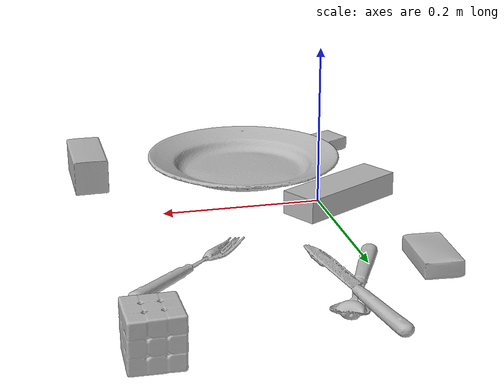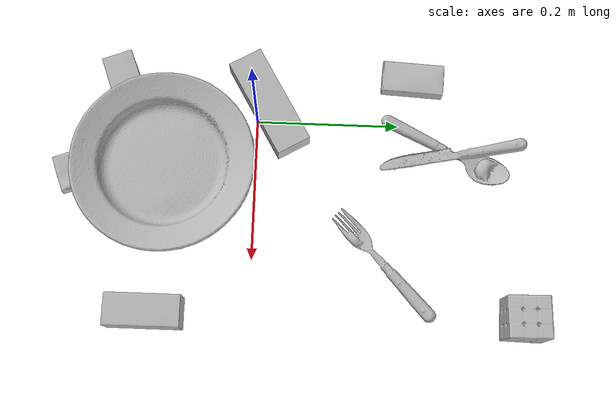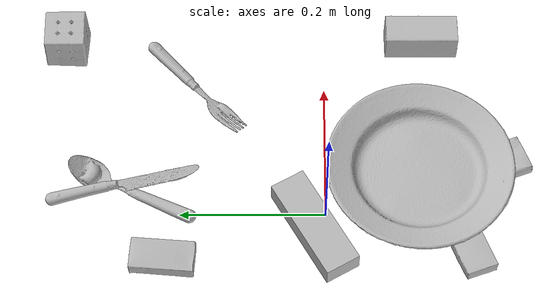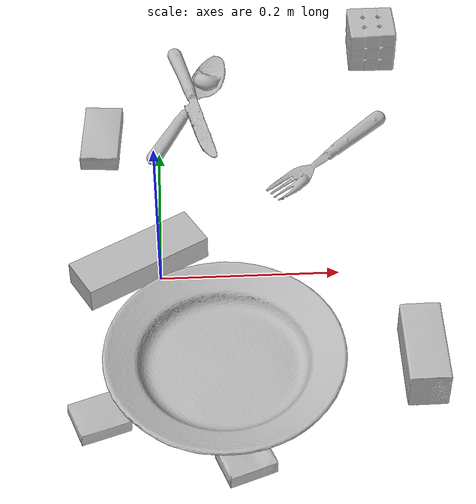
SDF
<sdf version="1.4">
  <world name="default">
    <light name="light1" type="point">
      <pose>0 0 1 0 0 0</pose>
      <diffuse>3 3 3 1</diffuse>
      <specular>3 3 3 1</specular>
    </light>
    <light name="light2" type="point">
      <pose>0 0.5 2 0 0 0</pose>
      <diffuse>1 1 1 1</diffuse>
      <specular>1 1 1 1</specular>
    </light>
    <light name="light3" type="point">
      <pose>0 0.5 2 0 0 0</pose>
      <diffuse>3 3 3 1</diffuse>
      <specular>3 3 3 1</specular>
    </light>
    <scene>
      <ambient>0.7 0.7 0.7</ambient>
    </scene>
    <model name="box11">
      <link name="link_box11">
        <collision name="default">
          <geometry>
            <mesh>
              <uri>model://pudding_box/collision_meshes/collision.obj</uri>
              <scale>0.5 0.5 0.5</scale>
            </mesh>
          </geometry>
          <surface>
            <friction>
              <ode>
                <mu>0.5</mu>
                <mu2>0.5</mu2>
              </ode>
            </friction>
          <contact>
        <ode>
            <max_vel>0</max_vel>
            <min_depth>0.0001</min_depth>
            <kp>1e8</kp>
        </ode>
    </contact></surface>
        </collision>
        <visual name="default">
          <geometry>
            <mesh>
              <uri>model://pudding_box/visual_meshes/visual.dae</uri>
              <scale>0.5 0.5 0.5</scale>
            </mesh>
          </geometry>
        </visual>
        <inertial>
          <mass>0.05641884729266167</mass>
          <pose>0.00024474109522998333 0.000403394311433658 -0.00025944141088984907 0.005213101771016666 -0.006603799659696515 0.020079828883224148</pose>
          <inertia>
            <ixx>1.5944652e-05</ixx>
            <iyy>1.0727675e-05</iyy>
            <izz>2.3546443e-05</izz>
            <ixy>0</ixy>
            <ixz>0</ixz>
            <iyz>0</iyz>
          </inertia>
        </inertial>
      </link>
      <pose>-0.06482654809951782 -0.19827161729335785 0.00986290443688631 0.022348535515033543 -0.011391690348917008 1.928832522095472</pose>
    </model>
    <model name="box12">
      <link name="link_box12">
        <collision name="default">
          <geometry>
            <mesh>
              <uri>model://wood_block/collision_meshes/collision.obj</uri>
              <scale>0.5 0.5 0.5</scale>
            </mesh>
          </geometry>
          <surface>
            <friction>
              <ode>
                <mu>0.5</mu>
                <mu2>0.5</mu2>
              </ode>
            </friction>
          <contact>
        <ode>
            <max_vel>0</max_vel>
            <min_depth>0.0001</min_depth>
            <kp>1e8</kp>
        </ode>
    </contact></surface>
        </collision>
        <visual name="default">
          <geometry>
            <mesh>
              <uri>model://wood_block/visual_meshes/visual.dae</uri>
              <scale>0.5 0.5 0.5</scale>
            </mesh>
          </geometry>
        </visual>
        <inertial>
          <mass>0.1445801854133606</mass>
          <pose>-2.906657982748584e-06 -0.000285404734313488 0.00013204291462898254 -0.052208162951624955 -0.0051926954609686745 -0.006861377578377277</pose>
          <inertia>
            <ixx>4.836754e-05</ixx>
            <iyy>0.0001527931</iyy>
            <izz>0.00015222155</izz>
            <ixy>0</ixy>
            <ixz>0</ixz>
            <iyz>0</iyz>
          </inertia>
        </inertial>
      </link>
      <pose>0.2784273624420166 -0.13958340883255005 0.022629261016845703 -0.005208649083009077 0.005718760318651293 -1.5672734494462148</pose>
    </model>
    <model name="box13">
      <link name="link_box13">
        <collision name="default">
          <geometry>
            <mesh>
              <uri>model://sugar_box/collision_meshes/collision.obj</uri>
              <scale>0.5 0.5 0.5</scale>
            </mesh>
          </geometry>
          <surface>
            <friction>
              <ode>
                <mu>0.5</mu>
                <mu2>0.5</mu2>
              </ode>
            </friction>
          <contact>
        <ode>
            <max_vel>0</max_vel>
            <min_depth>0.0001</min_depth>
            <kp>1e8</kp>
        </ode>
    </contact></surface>
        </collision>
        <visual name="default">
          <geometry>
            <mesh>
              <uri>model://sugar_box/visual_meshes/visual.dae</uri>
              <scale>0.5 0.5 0.5</scale>
            </mesh>
          </geometry>
        </visual>
        <inertial>
          <mass>0.1187032163143158</mass>
          <pose>0.0005171863595023751 1.924554817378521e-05 -0.00018182402709499002 -0.0004046259512710581 0.0010506635216588768 0.002615378556274426</pose>
          <inertia>
            <ixx>2.4725794e-05</ixx>
            <iyy>7.991886e-05</iyy>
            <izz>9.567241e-05</izz>
            <ixy>0</ixy>
            <ixz>0</ixz>
            <iyz>0</iyz>
          </inertia>
        </inertial>
      </link>
      <pose>-0.06861796230077744 0.21996280550956726 0.01139931008219719 0.0007750641310848407 -0.023432600019186806 1.5006574885309933</pose>
    </model>
    <model name="box21">
      <link name="link_box21">
        <collision name="default">
          <geometry>
            <mesh>
              <uri>model://jenga/collision_meshes/collision.obj</uri>
              <scale>1.0 1.0 1.0</scale>
            </mesh>
          </geometry>
          <surface>
            <friction>
              <ode>
                <mu>0.5</mu>
                <mu2>0.5</mu2>
              </ode>
            </friction>
          <contact>
        <ode>
            <max_vel>0</max_vel>
            <min_depth>0.0001</min_depth>
            <kp>1e8</kp>
        </ode>
    </contact></surface>
        </collision>
        <visual name="default">
          <geometry>
            <mesh>
              <uri>model://jenga/visual_meshes/visual.dae</uri>
              <scale>1.0 1.0 1.0</scale>
            </mesh>
          </geometry>
        </visual>
        <inertial>
          <mass>0.20898528397083282</mass>
          <pose>-2.502855807051674e-07 -0.00010250010382151231 -4.092339804628864e-05 0.0 -7.342154049184251e-07 0.0</pose>
          <inertia>
            <ixx>5.7831294e-05</ixx>
            <iyy>0.0003918633</iyy>
            <izz>0.00041834736</izz>
            <ixy>0</ixy>
            <ixz>0</ixz>
            <iyz>0</iyz>
          </inertia>
        </inertial>
      </link>
      <pose>-0.023701196536421776 0.01563483476638794 0.014999999664723873 3.3130699388483086e-08 -6.694471010599207e-09 -2.617586125379651</pose>
    </model>
    <model name="box22">
      <link name="link_box22">
        <collision name="default">
          <geometry>
            <mesh>
              <uri>model://rubiks_cube/collision_meshes/collision.obj</uri>
              <scale>1.0 1.0 1.0</scale>
            </mesh>
          </geometry>
          <surface>
            <friction>
              <ode>
                <mu>0.5</mu>
                <mu2>0.5</mu2>
              </ode>
            </friction>
          <contact>
        <ode>
            <max_vel>0</max_vel>
            <min_depth>0.0001</min_depth>
            <kp>1e8</kp>
        </ode>
    </contact></surface>
        </collision>
        <visual name="default">
          <geometry>
            <mesh>
              <uri>model://rubiks_cube/visual_meshes/visual.dae</uri>
              <scale>1.0 1.0 1.0</scale>
            </mesh>
          </geometry>
        </visual>
        <inertial>
          <mass>0.28698527812957764</mass>
          <pose>2.6721041649580002e-05 5.2569666877388954e-05 -7.2643156272533815e-06 -0.05467256881712973 -0.09813902151902686 -0.034455808755049874</pose>
          <inertia>
            <ixx>0.00015857864</ixx>
            <iyy>0.00015783912</iyy>
            <izz>0.00015989273</izz>
            <ixy>0</ixy>
            <ixz>0</ixz>
            <iyz>0</iyz>
          </inertia>
        </inertial>
      </link>
      <pose>0.27045637369155884 0.3684951663017273 0.02867894433438778 -4.054020297378018e-06 -1.7631871445410597e-06 -3.1329502977410466</pose>
    </model>
    <model name="box23">
      <link name="link_box23">
        <collision name="default">
          <geometry>
            <mesh>
              <uri>model://cracker_box/collision_meshes/collision.obj</uri>
              <scale>0.25 0.25 0.25</scale>
            </mesh>
          </geometry>
          <surface>
            <friction>
              <ode>
                <mu>0.5</mu>
                <mu2>0.5</mu2>
              </ode>
            </friction>
          <contact>
        <ode>
            <max_vel>0</max_vel>
            <min_depth>0.0001</min_depth>
            <kp>1e8</kp>
        </ode>
    </contact></surface>
        </collision>
        <visual name="default">
          <geometry>
            <mesh>
              <uri>model://cracker_box/visual_meshes/visual.dae</uri>
              <scale>0.25 0.25 0.25</scale>
            </mesh>
          </geometry>
        </visual>
        <inertial>
          <mass>0.04468085244297981</mass>
          <pose>0.00023660414444748312 6.358561222441494e-05 -0.0004257383698131889 -0.0003162076226327385 -0.011106488669128663 0.0025467943033026423</pose>
          <inertia>
            <ixx>7.10301e-06</ixx>
            <iyy>1.1728463e-05</iyy>
            <izz>1.6737597e-05</izz>
            <ixy>0</ixy>
            <ixz>0</ixz>
            <iyz>0</iyz>
          </inertia>
        </inertial>
      </link>
      <pose>0.08433187752962112 -0.2583155930042267 0.009096026420593262 -0.014051160674843547 -0.0050160060357335775 -2.7795816920891125</pose>
    </model>
    <model name="plate1">
      <link name="link_plate1">
        <collision name="default">
          <geometry>
            <mesh>
              <uri>model://plate/collision_meshes/collision.obj</uri>
              <scale>1.0 1.0 1.0</scale>
            </mesh>
          </geometry>
          <surface>
            <friction>
              <ode>
                <mu>0.5</mu>
                <mu2>0.5</mu2>
              </ode>
            </friction>
          <contact>
        <ode>
            <max_vel>0</max_vel>
            <min_depth>0.0001</min_depth>
            <kp>1e8</kp>
        </ode>
    </contact></surface>
        </collision>
        <visual name="default">
          <geometry>
            <mesh>
              <uri>model://plate/visual_meshes/visual.dae</uri>
              <scale>1.0 1.0 1.0</scale>
            </mesh>
          </geometry>
        </visual>
        <inertial>
          <mass>0.20184239745140076</mass>
          <pose>-0.0006044648471288383 0.00027825962752103806 -0.0010561983799561858 0.0022188105697194356 -0.003225466439192432 0.4526020757977656</pose>
          <inertia>
            <ixx>0.00094422296</ixx>
            <iyy>0.00093519164</iyy>
            <izz>0.0018467589</izz>
            <ixy>0</ixy>
            <ixz>0</ixz>
            <iyz>0</iyz>
          </inertia>
        </inertial>
      </link>
      <pose>0.06702572107315063 -0.13056668639183044 0.013733006082475185 1.0798482682490445e-07 1.186222251571155e-08 0.36265234418684505</pose>
    </model>
    <model name="silverware1">
      <link name="link_silverware1">
        <collision name="default">
          <geometry>
            <mesh>
              <uri>model://fork/collision_meshes/collision.obj</uri>
              <scale>1.0 1.0 1.0</scale>
            </mesh>
          </geometry>
          <surface>
            <friction>
              <ode>
                <mu>0.5</mu>
                <mu2>0.5</mu2>
              </ode>
            </friction>
          <contact>
        <ode>
            <max_vel>0</max_vel>
            <min_depth>0.0001</min_depth>
            <kp>1e8</kp>
        </ode>
    </contact></surface>
        </collision>
        <visual name="default">
          <geometry>
            <mesh>
              <uri>model://fork/visual_meshes/visual.dae</uri>
              <scale>1.0 1.0 1.0</scale>
            </mesh>
          </geometry>
        </visual>
        <inertial>
          <mass>0.03151825815439224</mass>
          <pose>-0.029570046812295914 0.00046588233090005815 0.0003218861820641905 -0.013550990610422763 -0.010977834578584837 0.014453900606944525</pose>
          <inertia>
            <ixx>1.1048933e-06</ixx>
            <iyy>8.2285114e-05</iyy>
            <izz>8.2779305e-05</izz>
            <ixy>0</ixy>
            <ixz>0</ixz>
            <iyz>0</iyz>
          </inertia>
        </inertial>
      </link>
      <pose>0.2027038335800171 0.18364757299423218 0.005738855339586735 -0.1892353473953535 0.02425312773231947 -2.402477285683084</pose>
    </model>
    <model name="silverware2">
      <link name="link_silverware2">
        <collision name="default">
          <geometry>
            <mesh>
              <uri>model://spoon/collision_meshes/collision.obj</uri>
              <scale>1.0 1.0 1.0</scale>
            </mesh>
          </geometry>
          <surface>
            <friction>
              <ode>
                <mu>0.5</mu>
                <mu2>0.5</mu2>
              </ode>
            </friction>
          <contact>
        <ode>
            <max_vel>0</max_vel>
            <min_depth>0.0001</min_depth>
            <kp>1e8</kp>
        </ode>
    </contact></surface>
        </collision>
        <visual name="default">
          <geometry>
            <mesh>
              <uri>model://spoon/visual_meshes/visual.dae</uri>
              <scale>1.0 1.0 1.0</scale>
            </mesh>
          </geometry>
        </visual>
        <inertial>
          <mass>0.04083608463406563</mass>
          <pose>-0.005526324734091759 -0.001603417913429439 -0.0007271658978424966 0.03521537575369321 -0.03906582415196765 0.006150608891198343</pose>
          <inertia>
            <ixx>2.2713682e-06</ixx>
            <iyy>0.0001553799</iyy>
            <izz>0.0001565001</izz>
            <ixy>0</ixy>
            <ixz>0</ixz>
            <iyz>0</iyz>
          </inertia>
        </inertial>
      </link>
      <pose>0.03207472339272499 0.2672242224216461 0.008374716155230999 -0.04075662222557215 0.02639408134473247 1.1113792487348726</pose>
    </model>
    <model name="silverware3">
      <link name="link_silverware3">
        <collision name="default">
          <geometry>
            <mesh>
              <uri>model://knife/collision_meshes/collision.obj</uri>
              <scale>1.0 1.0 1.0</scale>
            </mesh>
          </geometry>
          <surface>
            <friction>
              <ode>
                <mu>0.5</mu>
                <mu2>0.5</mu2>
              </ode>
            </friction>
          <contact>
        <ode>
            <max_vel>0</max_vel>
            <min_depth>0.0001</min_depth>
            <kp>1e8</kp>
        </ode>
    </contact></surface>
        </collision>
        <visual name="default">
          <geometry>
            <mesh>
              <uri>model://knife/visual_meshes/visual.dae</uri>
              <scale>1.0 1.0 1.0</scale>
            </mesh>
          </geometry>
        </visual>
        <inertial>
          <mass>0.024411516264081</mass>
          <pose>-0.023785248398780823 0.0015275123296305537 5.062021955382079e-05 0.07305335097392199 0.01724841144103926 -0.007409823891069756</pose>
          <inertia>
            <ixx>6.9289786e-07</ixx>
            <iyy>9.37851e-05</iyy>
            <izz>9.400826e-05</izz>
            <ixy>0</ixy>
            <ixz>0</ixz>
            <iyz>0</iyz>
          </inertia>
        </inertial>
      </link>
      <pose>0.04109175503253937 0.278507798910141 0.011378562077879906 0.056615270545178224 -0.05169045265605001 -1.3617719364061172</pose>
    </model>
  <physics type="ode">
      <max_contacts>50</max_contacts>
      <ode>
        <solver>
          <type>quick</type>
          <iters>75</iters>
        </solver>
        <constraints>
          <contact_max_correcting_vel>0</contact_max_correcting_vel>
          <contact_surface_layer>0</contact_surface_layer>
        </constraints>
      </ode>
    </physics></world>
</sdf>
